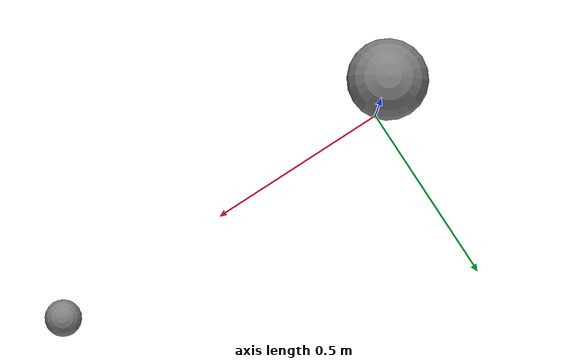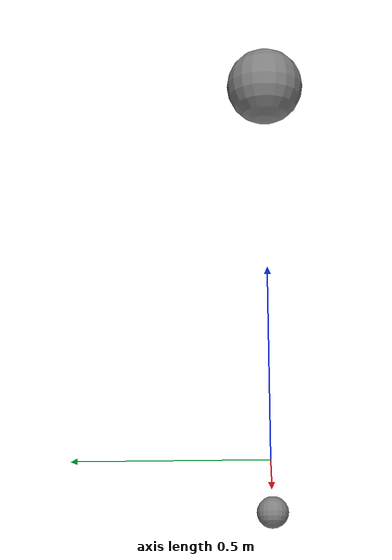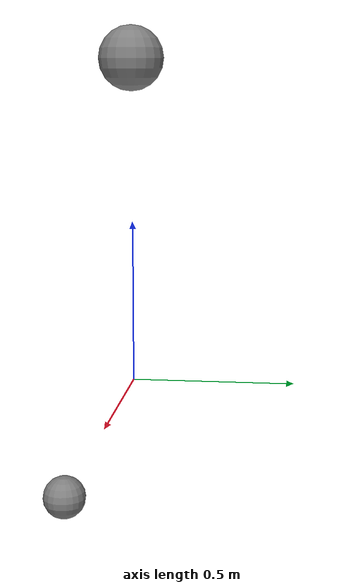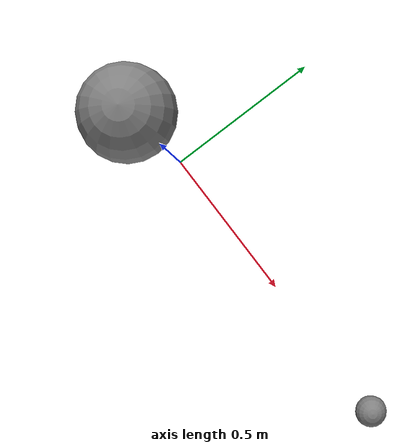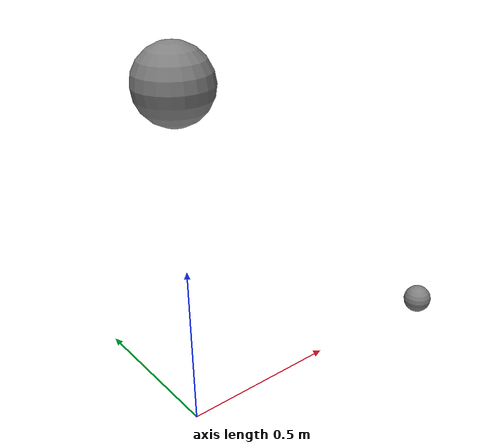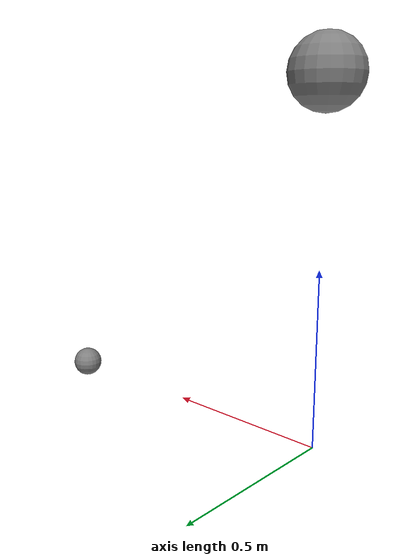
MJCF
<mujoco model="mocap_kf">
        <option gravity="0 0 -9.81" timestep="0.002"/>
        <worldbody>
            <body name="target" mocap="true" pos="1 0 0">
                <geom type="sphere" size="0.05" mass="0.1"/>
            </body>
            <body name="link" pos="0 0 1">
                <joint name="hinge" type="hinge" axis="0 1 0"/>
                <geom type="sphere" size="0.1" mass="1.0"/>
            </body>
        </worldbody>
        <keyframe>
            <key name="moved" qpos="0.3" mpos="5 6 7" mquat="1 0 0 0"/>
        </keyframe>
    </mujoco>
